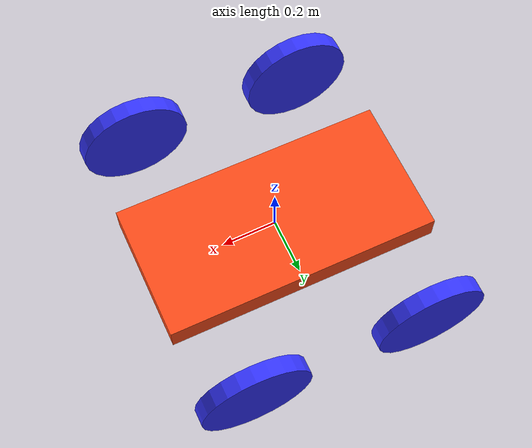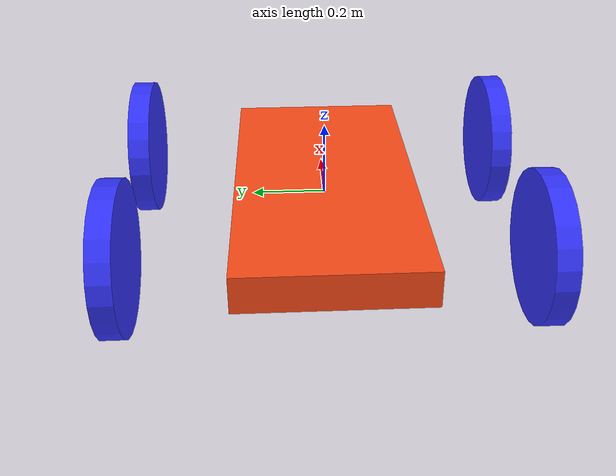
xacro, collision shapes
<?xml version="1.0"?>
<robot xmlns:xacro="http://www.ros.org/wiki/xacro" >

    <xacro:include filename="inertial_macros.xacro"/>

    <xacro:property name="chassis_length" value="1.2"/>
    <xacro:property name="chassis_width" value="1.0"/>
    <xacro:property name="chassis_height" value="0.01"/>
    <xacro:property name="chassis_mass" value="10.0"/>
    <xacro:property name="wheel_radius" value="0.2"/>
    <xacro:property name="wheel_thickness" value="0.060"/>
    <xacro:property name="wheel_mass" value="1.0"/>
    <xacro:property name="wheel_offset_x" value="0.10"/>
    <xacro:property name="wheel_offset_y" value="0.535"/>
    <xacro:property name="wheel_offset_z" value="-0.050"/>
    <xacro:property name="wheel_seperate_x" value="0.325"/>
    <xacro:property name="caster_wheel_radius" value="0.0175"/>
    <xacro:property name="caster_wheel_mass" value="0.1"/>
    <xacro:property name="caster_wheel_offset_x" value="0.075"/>
    <xacro:property name="caster_wheel_offset_z" value="${wheel_offset_z - wheel_radius + caster_wheel_radius}"/>

    <material name="white">
        <color rgba="1 1 1 1" />
    </material>

    <material name="orange">
        <color rgba="1 0.3 0.1 1"/>
    </material>

    <material name="blue">
        <color rgba="0.2 0.2 1 1"/>
    </material>

    <material name="black">
        <color rgba="0 0 0 1"/>
    </material>

    <material name="red">
        <color rgba="1 0 0 1"/>
    </material>

    <!-- BASE LINK -->

    <link name="base_link">

    </link>

    <!-- BASE_FOOTPRINT LINK -->

    <joint name="base_footprint_joint" type="fixed">
        <parent link="base_link"/>
        <child link="base_footprint"/>
        <origin xyz="0 0 0" rpy="0 0 0"/>
    </joint>

    <link name="base_footprint">
    </link>

    <!-- CHASSIS LINK -->

    <joint name="chassis_joint" type="fixed">
        <parent link="base_link"/>
        <child link="chassis"/>
        <origin xyz="0 0 0"/>
    </joint>

    <link name="chassis">
        <visual>
            <origin xyz="0 0 -0.075" rpy="0 0 0" />
            <geometry>
                <mesh filename="$(find articubot_one)/description/mesh/blender_top.stl"/>$
            </geometry>
            <material name="orange"/>
        </visual>
        <collision>
            <origin xyz="0 0 0"/>
            <geometry>
                <box size="1.0 0.5 0.1"/>
            </geometry>
            <material name="orange"/>
        </collision>
        <xacro:inertial_box mass="0.5" x="${chassis_length}" y="${chassis_width}" z="${chassis_height}">
            <origin xyz="0 0 0" rpy="0 0 0"/>
        </xacro:inertial_box>
    </link>

    <gazebo reference="chassis">
        <material>Gazebo/Orange</material>
    </gazebo>

    <!-- TOP CHASSIS TOP LINK -->

    <joint name="chassis_top_joint" type="fixed">
        <parent link="base_link"/>
        <child link="chassis_top"/>
        <origin xyz="0 0 0"/>
    </joint>

    <link name="chassis_top">
        <visual>
            <origin xyz="0 0 -0.075" rpy="0 0 0" />
            <geometry>
                <mesh filename="$(find articubot_one)/description/mesh/blender_body.stl"/>$
            </geometry>
            <material name="red"/>
        </visual>
        <collision>
            <origin xyz="0 0 0"/>
            <geometry>
                <box size="1.0 0.5 0.1"/>
            </geometry>
            <material name="red"/>
        </collision>
        <xacro:inertial_box mass="0.5" x="${chassis_length}" y="${chassis_width}" z="${chassis_height}">
            <origin xyz="0 0 0" rpy="0 0 0"/>
        </xacro:inertial_box>
    </link>

    <gazebo reference="chassis_top">
        <material>Gazebo/Red</material>
    </gazebo>
    <!-- FRONT LEFT WHEEL LINK -->

    <joint name="front_left_wheel_joint" type="continuous">
        <parent link="base_link"/>
        <child link="front_left_wheel"/>
        <origin xyz="${wheel_seperate_x} ${wheel_offset_y} 0" rpy="-${pi/2} 0 0" />
        <axis xyz="0 0 1"/>
        <joint_properties damping="0.0" friction="0.0" stiffness="0.1"/>

    </joint>

    <link name="front_left_wheel">
        <visual>
            <origin xyz="0 0 0" rpy="0 ${pi} 0" />
            <geometry>
                <mesh filename="$(find articubot_one)/description/mesh/blender_wheel.stl"/>$
            </geometry>
            <material name="blue"/>
        </visual>
        <collision>
            <geometry>
                <cylinder radius="${wheel_radius}" length="${wheel_thickness}"/>
            </geometry>
        </collision>
        <xacro:inertial_cylinder mass="${wheel_mass}" length="${wheel_thickness}" radius="${wheel_radius}">
            <origin xyz="0 0 0" rpy="0 0 0"/>
        </xacro:inertial_cylinder>
    </link>

    <gazebo reference="front_left_wheel">
        <material>Gazebo/Blue</material>
        <mu1>10.0</mu1>
        <mu2>10.0</mu2>
    </gazebo>

    <!-- REAR LEFT WHEEL LINK -->

    <joint name="rear_left_wheel_joint" type="continuous">
        <parent link="base_link"/>
        <child link="rear_left_wheel"/>
        <origin xyz="${-wheel_seperate_x} ${wheel_offset_y} 0" rpy="-${pi/2} 0 0" />
        <axis xyz="0 0 1"/>
        <joint_properties damping="0.0" friction="0.0" stiffness="0.1"/>

    </joint>

    <link name="rear_left_wheel">
        <visual>
            <origin xyz="0 0 0" rpy="0 ${pi} 0" />
            <geometry>
                <mesh filename="$(find articubot_one)/description/mesh/blender_wheel.stl"/>$
            </geometry>
            <material name="blue"/>
        </visual>
        <collision>
            <geometry>
                <cylinder radius="${wheel_radius}" length="${wheel_thickness}"/>
            </geometry>
        </collision>
        <xacro:inertial_cylinder mass="${wheel_mass}" length="${wheel_thickness}" radius="${wheel_radius}">
            <origin xyz="0 0 0" rpy="0 0 0"/>
        </xacro:inertial_cylinder>
    </link>

    <gazebo reference="rear_left_wheel">
        <material>Gazebo/Blue</material>
        <mu1>10.0</mu1>
        <mu2>10.0</mu2>
    </gazebo>

    <!-- FRONT RIGHT WHEEL LINK -->

    <joint name="front_right_wheel_joint" type="continuous">
        <parent link="base_link"/>
        <child link="front_right_wheel"/>
        <origin xyz="${wheel_seperate_x} ${-wheel_offset_y} 0" rpy="${pi/2} 0 0" />
        <axis xyz="0 0 -1"/>
    <joint_properties damping="0.0" friction="0.0" stiffness="0.1"/>
    </joint>

    <link name="front_right_wheel">
        <visual>
            <origin xyz="0 0 0" rpy="0 ${pi} 0" />
            <geometry>
                <mesh filename="$(find articubot_one)/description/mesh/blender_wheel.stl"/>$
            </geometry>
            <material name="blue"/>
        </visual>
        <collision>
            <geometry>
                <cylinder radius="${wheel_radius}" length="${wheel_thickness}"/>
            </geometry>
        </collision>
        <xacro:inertial_cylinder mass="${wheel_mass}" length="${wheel_thickness}" radius="${wheel_radius}">
            <origin xyz="0 0 0" rpy="0 0 0"/>
        </xacro:inertial_cylinder>
    </link>

    <gazebo reference="front_right_wheel">
        <material>Gazebo/Blue</material>
        <mu1>10.0</mu1>
        <mu2>10.0</mu2>
    </gazebo>

    <!-- REAR RIGHT WHEEL LINK -->

    <joint name="rear_right_wheel_joint" type="continuous">
        <parent link="base_link"/>
        <child link="rear_right_wheel"/>
        <origin xyz="${-wheel_seperate_x} ${-wheel_offset_y} 0" rpy="${pi/2} 0 0" />
        <axis xyz="0 0 -1"/>
    <joint_properties damping="0.0" friction="0.0" stiffness="0.1"/>
    </joint>

    <link name="rear_right_wheel">
        <visual>
            <origin xyz="0 0 0" rpy="0 ${pi} 0" />
            <geometry>
                <mesh filename="$(find articubot_one)/description/mesh/blender_wheel.stl"/>$
            </geometry>
            <material name="blue"/>
        </visual>
        <collision>
            <geometry>
                <cylinder radius="${wheel_radius}" length="${wheel_thickness}"/>
            </geometry>
        </collision>
        <xacro:inertial_cylinder mass="${wheel_mass}" length="${wheel_thickness}" radius="${wheel_radius}">
            <origin xyz="0 0 0" rpy="0 0 0"/>
        </xacro:inertial_cylinder>
    </link>

    <gazebo reference="rear_right_wheel">
        <material>Gazebo/Blue</material>
        <mu1>10.0</mu1>
        <mu2>10.0</mu2>
    </gazebo>

</robot>
